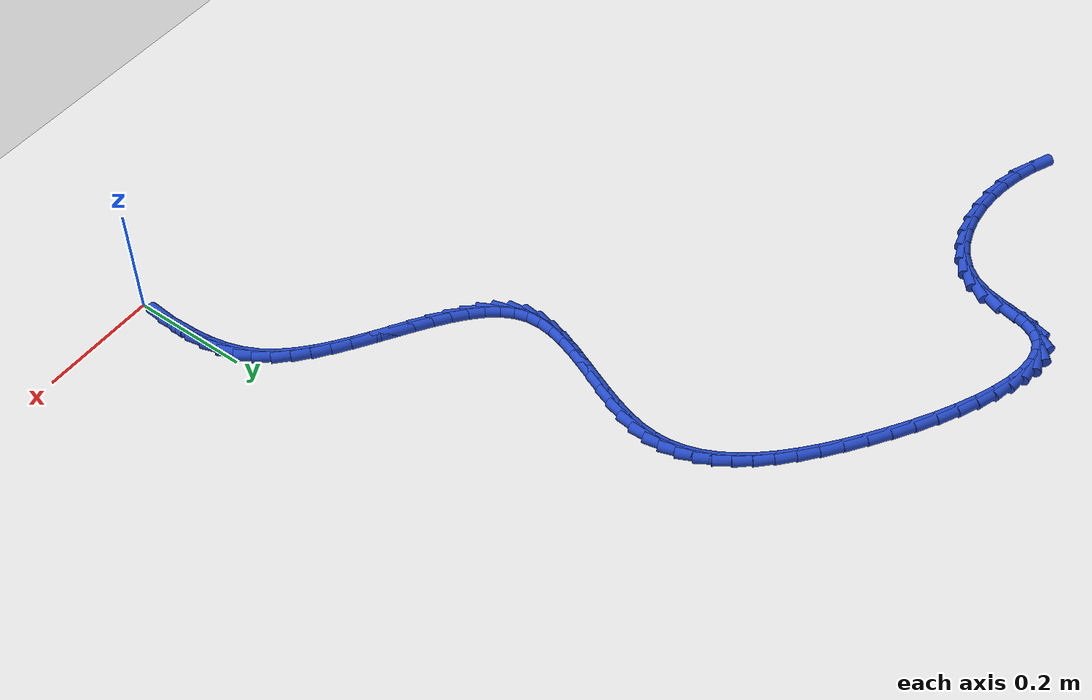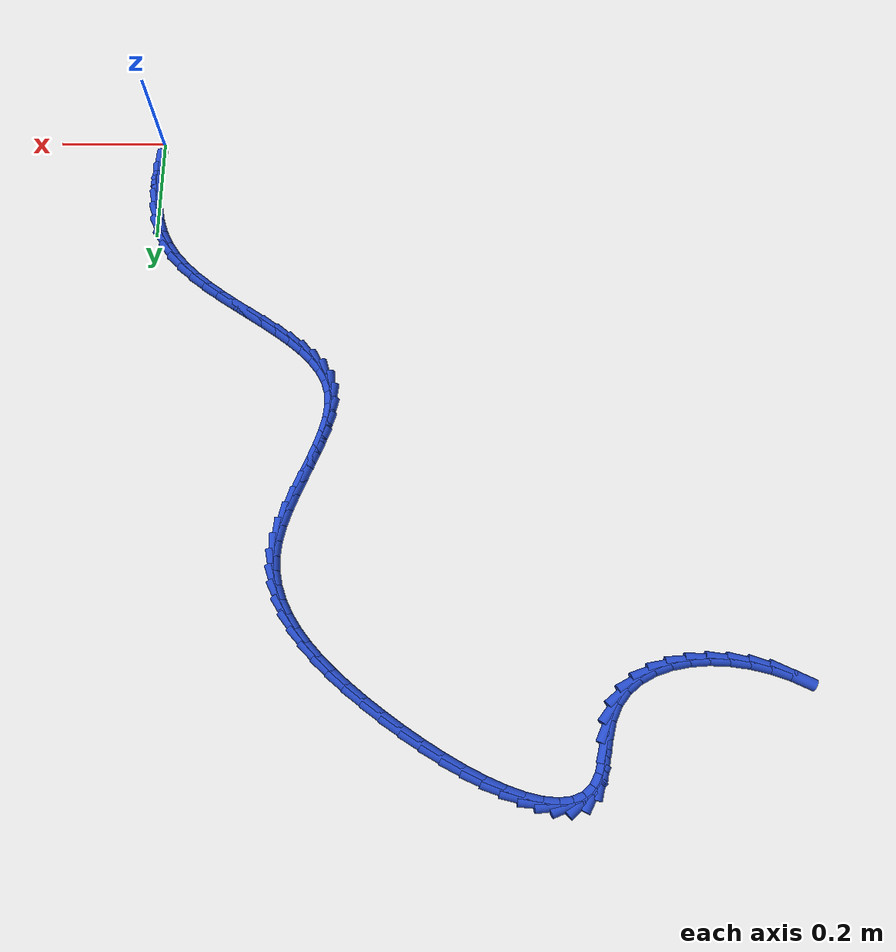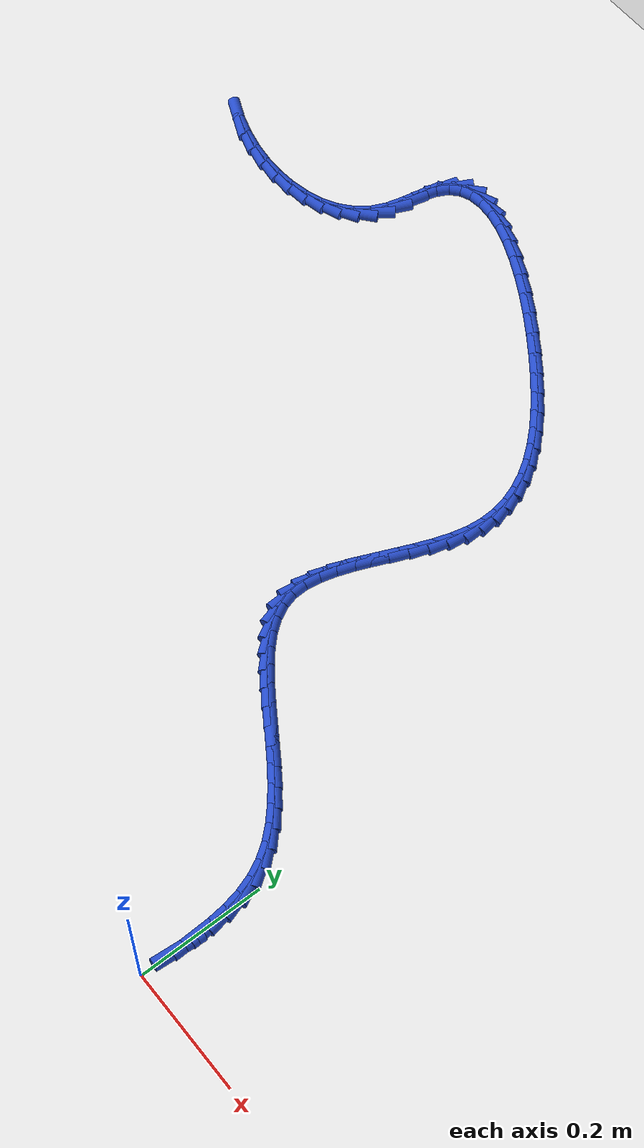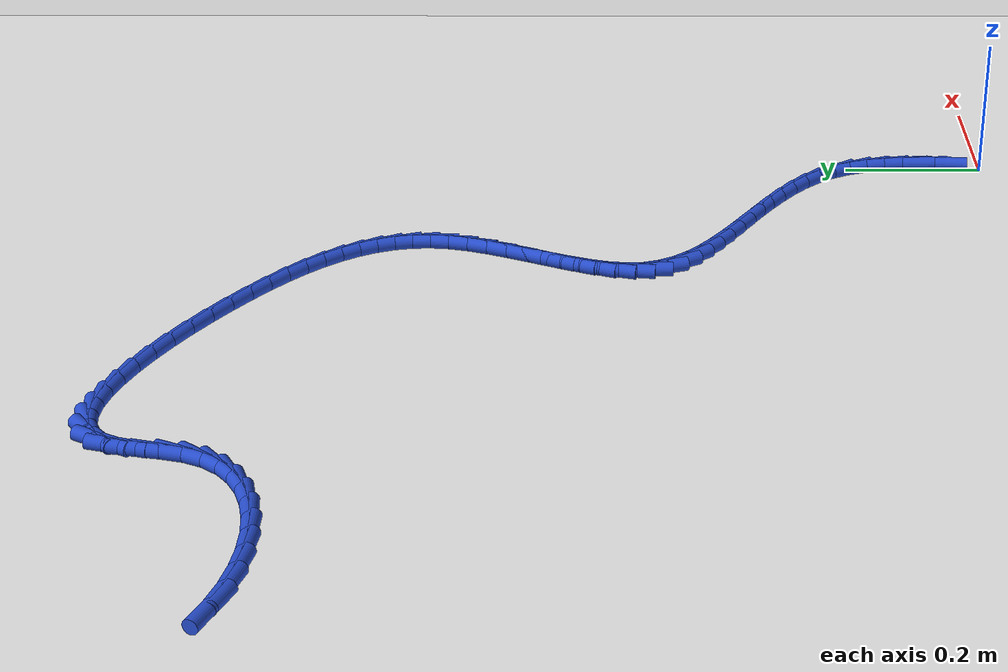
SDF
<sdf version="1.6">
 <world name="default">
  <model name="ground_plane">
   <static>1</static>
   <link name="link">
    <collision name="collision">
     <geometry><plane><normal>0 0 1</normal><size>100 100</size></plane></geometry>
     <surface><friction><ode><mu>100</mu><mu2>50</mu2></ode></friction></surface>
    </collision>
    <visual name="visual">
     <cast_shadows>0</cast_shadows>
     <geometry><plane><normal>0 0 1</normal><size>100 100</size></plane></geometry>
     <material>
      <script><uri>file://media/materials/scripts/gazebo.material</uri><name>Gazebo/WhiteGlow</name></script>
     </material>
    </visual>
   </link>
  </model>
  <model name="line">
   <link name="link_3">
    <pose>0.004853710855883276 0.08817364938218986 0.01 0 1.57 -1.536044362971187</pose>
    <collision name="collision">
     <geometry><cylinder><radius>0.01</radius><length>0.08</length></cylinder></geometry>
    </collision>
    <visual name="visual">
     <material>
      <script><name>Gazebo/Blue</name><uri>file://media/materials/scripts/gazebo.material</uri></script>
     </material>
     <geometry><cylinder><radius>0.01</radius><length>0.08</length></cylinder></geometry>
    </visual>
   </link>
   <link name="link_4">
    <pose>0.0038422200450848867 0.11726793570787472 0.01 0 1.57 -1.4612395565642085</pose>
    <collision name="collision">
     <geometry><cylinder><radius>0.01</radius><length>0.08</length></cylinder></geometry>
    </collision>
    <visual name="visual">
     <material>
      <script><name>Gazebo/Blue</name><uri>file://media/materials/scripts/gazebo.material</uri></script>
     </material>
     <geometry><cylinder><radius>0.01</radius><length>0.08</length></cylinder></geometry>
    </visual>
   </link>
   <link name="link_5">
    <pose>0.000710977737129961 0.1457344968598441 0.01 0 1.57 -1.3656035269785924</pose>
    <collision name="collision">
     <geometry><cylinder><radius>0.01</radius><length>0.08</length></cylinder></geometry>
    </collision>
    <visual name="visual">
     <material>
      <script><name>Gazebo/Blue</name><uri>file://media/materials/scripts/gazebo.material</uri></script>
     </material>
     <geometry><cylinder><radius>0.01</radius><length>0.08</length></cylinder></geometry>
    </visual>
   </link>
   <link name="link_6">
    <pose>-0.005023048637447583 0.17328577677438217 0.01 0 1.57 -1.2477814903358084</pose>
    <collision name="collision">
     <geometry><cylinder><radius>0.01</radius><length>0.08</length></cylinder></geometry>
    </collision>
    <visual name="visual">
     <material>
      <script><name>Gazebo/Blue</name><uri>file://media/materials/scripts/gazebo.material</uri></script>
     </material>
     <geometry><cylinder><radius>0.01</radius><length>0.08</length></cylinder></geometry>
    </visual>
   </link>
   <link name="link_7">
    <pose>-0.013842891648113805 0.19963421938777318 0.01 0 1.57 -1.1084515625861266</pose>
    <collision name="collision">
     <geometry><cylinder><radius>0.01</radius><length>0.08</length></cylinder></geometry>
    </collision>
    <visual name="visual">
     <material>
      <script><name>Gazebo/Blue</name><uri>file://media/materials/scripts/gazebo.material</uri></script>
     </material>
     <geometry><cylinder><radius>0.01</radius><length>0.08</length></cylinder></geometry>
    </visual>
   </link>
   <link name="link_8">
    <pose>-0.026231483053913266 0.22449231513812304 0.01 0 1.57 -0.9607501914604886</pose>
    <collision name="collision">
     <geometry><cylinder><radius>0.01</radius><length>0.08</length></cylinder></geometry>
    </collision>
    <visual name="visual">
     <material>
      <script><name>Gazebo/Blue</name><uri>file://media/materials/scripts/gazebo.material</uri></script>
     </material>
     <geometry><cylinder><radius>0.01</radius><length>0.08</length></cylinder></geometry>
    </visual>
   </link>
   <link name="link_9">
    <pose>-0.04243924915800756 0.24767980455804334 0.01 0 1.57 -0.8368820884955975</pose>
    <collision name="collision">
     <geometry><cylinder><radius>0.01</radius><length>0.08</length></cylinder></geometry>
    </collision>
    <visual name="visual">
     <material>
      <script><name>Gazebo/Blue</name><uri>file://media/materials/scripts/gazebo.material</uri></script>
     </material>
     <geometry><cylinder><radius>0.01</radius><length>0.08</length></cylinder></geometry>
    </visual>
   </link>
   <link name="link_10">
    <pose>-0.061987898365337336 0.2693525711027094 0.01 0 1.57 -0.7411289601158716</pose>
    <collision name="collision">
     <geometry><cylinder><radius>0.01</radius><length>0.08</length></cylinder></geometry>
    </collision>
    <visual name="visual">
     <material>
      <script><name>Gazebo/Blue</name><uri>file://media/materials/scripts/gazebo.material</uri></script>
     </material>
     <geometry><cylinder><radius>0.01</radius><length>0.08</length></cylinder></geometry>
    </visual>
   </link>
   <link name="link_11">
    <pose>-0.08425675304448016 0.2897321780445642 0.01 0 1.57 -0.6700518799153489</pose>
    <collision name="collision">
     <geometry><cylinder><radius>0.01</radius><length>0.08</length></cylinder></geometry>
    </collision>
    <visual name="visual">
     <material>
      <script><name>Gazebo/Blue</name><uri>file://media/materials/scripts/gazebo.material</uri></script>
     </material>
     <geometry><cylinder><radius>0.01</radius><length>0.08</length></cylinder></geometry>
    </visual>
   </link>
   <link name="link_12">
    <pose>-0.10862513556401354 0.30904018865605126 0.01 0 1.57 -0.6201385105414714</pose>
    <collision name="collision">
     <geometry><cylinder><radius>0.01</radius><length>0.08</length></cylinder></geometry>
    </collision>
    <visual name="visual">
     <material>
      <script><name>Gazebo/Blue</name><uri>file://media/materials/scripts/gazebo.material</uri></script>
     </material>
     <geometry><cylinder><radius>0.01</radius><length>0.08</length></cylinder></geometry>
    </visual>
   </link>
   <link name="link_13">
    <pose>-0.13447236829251505 0.3274981662096138 0.01 0 1.57 -0.5886738410782767</pose>
    <collision name="collision">
     <geometry><cylinder><radius>0.01</radius><length>0.08</length></cylinder></geometry>
    </collision>
    <visual name="visual">
     <material>
      <script><name>Gazebo/Blue</name><uri>file://media/materials/scripts/gazebo.material</uri></script>
     </material>
     <geometry><cylinder><radius>0.01</radius><length>0.08</length></cylinder></geometry>
    </visual>
   </link>
   <link name="link_14">
    <pose>-0.1611777735985621 0.3453276739776952 0.01 0 1.57 -0.5740159463636794</pose>
    <collision name="collision">
     <geometry><cylinder><radius>0.01</radius><length>0.08</length></cylinder></geometry>
    </collision>
    <visual name="visual">
     <material>
      <script><name>Gazebo/Blue</name><uri>file://media/materials/scripts/gazebo.material</uri></script>
     </material>
     <geometry><cylinder><radius>0.01</radius><length>0.08</length></cylinder></geometry>
    </visual>
   </link>
   <link name="link_15">
    <pose>-0.18812067385073244 0.36275027523273856 0.01 0 1.57 -0.5756719464370353</pose>
    <collision name="collision">
     <geometry><cylinder><radius>0.01</radius><length>0.08</length></cylinder></geometry>
    </collision>
    <visual name="visual">
     <material>
      <script><name>Gazebo/Blue</name><uri>file://media/materials/scripts/gazebo.material</uri></script>
     </material>
     <geometry><cylinder><radius>0.01</radius><length>0.08</length></cylinder></geometry>
    </visual>
   </link>
   <link name="link_16">
    <pose>-0.21468039141760334 0.37998753324718737 0.01 0 1.57 -0.5943750627849352</pose>
    <collision name="collision">
     <geometry><cylinder><radius>0.01</radius><length>0.08</length></cylinder></geometry>
    </collision>
    <visual name="visual">
     <material>
      <script><name>Gazebo/Blue</name><uri>file://media/materials/scripts/gazebo.material</uri></script>
     </material>
     <geometry><cylinder><radius>0.01</radius><length>0.08</length></cylinder></geometry>
    </visual>
   </link>
   <link name="link_17">
    <pose>-0.24023624866775264 0.39726101129348484 0.01 0 1.57 -0.6322494054699238</pose>
    <collision name="collision">
     <geometry><cylinder><radius>0.01</radius><length>0.08</length></cylinder></geometry>
    </collision>
    <visual name="visual">
     <material>
      <script><name>Gazebo/Blue</name><uri>file://media/materials/scripts/gazebo.material</uri></script>
     </material>
     <geometry><cylinder><radius>0.01</radius><length>0.08</length></cylinder></geometry>
    </visual>
   </link>
   <link name="link_18">
    <pose>-0.2641675679697576 0.4147922726440743 0.01 0 1.57 -0.6930719671084805</pose>
    <collision name="collision">
     <geometry><cylinder><radius>0.01</radius><length>0.08</length></cylinder></geometry>
    </collision>
    <visual name="visual">
     <material>
      <script><name>Gazebo/Blue</name><uri>file://media/materials/scripts/gazebo.material</uri></script>
     </material>
     <geometry><cylinder><radius>0.01</radius><length>0.08</length></cylinder></geometry>
    </visual>
   </link>
   <link name="link_19">
    <pose>-0.28585367169219594 0.43280288057139904 0.01 0 1.57 -0.7825021488508537</pose>
    <collision name="collision">
     <geometry><cylinder><radius>0.01</radius><length>0.08</length></cylinder></geometry>
    </collision>
    <visual name="visual">
     <material>
      <script><name>Gazebo/Blue</name><uri>file://media/materials/scripts/gazebo.material</uri></script>
     </material>
     <geometry><cylinder><radius>0.01</radius><length>0.08</length></cylinder></geometry>
    </visual>
   </link>
   <link name="link_20">
    <pose>-0.3046738822036452 0.45151439834790236 0.01 0 1.57 -0.9077646450076717</pose>
    <collision name="collision">
     <geometry><cylinder><radius>0.01</radius><length>0.08</length></cylinder></geometry>
    </collision>
    <visual name="visual">
     <material>
      <script><name>Gazebo/Blue</name><uri>file://media/materials/scripts/gazebo.material</uri></script>
     </material>
     <geometry><cylinder><radius>0.01</radius><length>0.08</length></cylinder></geometry>
    </visual>
   </link>
   <link name="link_21">
    <pose>-0.32000752187268283 0.47114838924602753 0.01 0 1.57 -1.075429963759417</pose>
    <collision name="collision">
     <geometry><cylinder><radius>0.01</radius><length>0.08</length></cylinder></geometry>
    </collision>
    <visual name="visual">
     <material>
      <script><name>Gazebo/Blue</name><uri>file://media/materials/scripts/gazebo.material</uri></script>
     </material>
     <geometry><cylinder><radius>0.01</radius><length>0.08</length></cylinder></geometry>
    </visual>
   </link>
   <link name="link_22">
    <pose>-0.33123391306788624 0.4919264165382179 0.01 0 1.57 -1.2853421165258418</pose>
    <collision name="collision">
     <geometry><cylinder><radius>0.01</radius><length>0.08</length></cylinder></geometry>
    </collision>
    <visual name="visual">
     <material>
      <script><name>Gazebo/Blue</name><uri>file://media/materials/scripts/gazebo.material</uri></script>
     </material>
     <geometry><cylinder><radius>0.01</radius><length>0.08</length></cylinder></geometry>
    </visual>
   </link>
   <link name="link_23">
    <pose>-0.33773237815783325 0.5140700434969168 0.01 0 1.57 -1.514319083122611</pose>
    <collision name="collision">
     <geometry><cylinder><radius>0.01</radius><length>0.08</length></cylinder></geometry>
    </collision>
    <visual name="visual">
     <material>
      <script><name>Gazebo/Blue</name><uri>file://media/materials/scripts/gazebo.material</uri></script>
     </material>
     <geometry><cylinder><radius>0.01</radius><length>0.08</length></cylinder></geometry>
    </visual>
   </link>
   <link name="link_24">
    <pose>-0.33907086867658515 0.5377444831598893 0.01 0 1.57 1.4423959399795072</pose>
    <collision name="collision">
     <geometry><cylinder><radius>0.01</radius><length>0.08</length></cylinder></geometry>
    </collision>
    <visual name="visual">
     <material>
      <script><name>Gazebo/Blue</name><uri>file://media/materials/scripts/gazebo.material</uri></script>
     </material>
     <geometry><cylinder><radius>0.01</radius><length>0.08</length></cylinder></geometry>
    </visual>
   </link>
   <link name="link_25">
    <pose>-0.3358345021069804 0.5628110849509536 0.01 0 1.57 1.3139983009104146</pose>
    <collision name="collision">
     <geometry><cylinder><radius>0.01</radius><length>0.08</length></cylinder></geometry>
    </collision>
    <visual name="visual">
     <material>
      <script><name>Gazebo/Blue</name><uri>file://media/materials/scripts/gazebo.material</uri></script>
     </material>
     <geometry><cylinder><radius>0.01</radius><length>0.08</length></cylinder></geometry>
    </visual>
   </link>
   <link name="link_26">
    <pose>-0.32894972497070313 0.589029231180877 0.01 0 1.57 1.2304699367790497</pose>
    <collision name="collision">
     <geometry><cylinder><radius>0.01</radius><length>0.08</length></cylinder></geometry>
    </collision>
    <visual name="visual">
     <material>
      <script><name>Gazebo/Blue</name><uri>file://media/materials/scripts/gazebo.material</uri></script>
     </material>
     <geometry><cylinder><radius>0.01</radius><length>0.08</length></cylinder></geometry>
    </visual>
   </link>
   <link name="link_27">
    <pose>-0.3193432340762747 0.6161582293908558 0.01 0 1.57 1.1815804407903943</pose>
    <collision name="collision">
     <geometry><cylinder><radius>0.01</radius><length>0.08</length></cylinder></geometry>
    </collision>
    <visual name="visual">
     <material>
      <script><name>Gazebo/Blue</name><uri>file://media/materials/scripts/gazebo.material</uri></script>
     </material>
     <geometry><cylinder><radius>0.01</radius><length>0.08</length></cylinder></geometry>
    </visual>
   </link>
   <link name="link_28">
    <pose>-0.3079417262322162 0.6439573871220857 0.01 0 1.57 1.1607728836388596</pose>
    <collision name="collision">
     <geometry><cylinder><radius>0.01</radius><length>0.08</length></cylinder></geometry>
    </collision>
    <visual name="visual">
     <material>
      <script><name>Gazebo/Blue</name><uri>file://media/materials/scripts/gazebo.material</uri></script>
     </material>
     <geometry><cylinder><radius>0.01</radius><length>0.08</length></cylinder></geometry>
    </visual>
   </link>
   <link name="link_29">
    <pose>-0.2956718982470489 0.6721860119157623 0.01 0 1.57 1.164936784153566</pose>
    <collision name="collision">
     <geometry><cylinder><radius>0.01</radius><length>0.08</length></cylinder></geometry>
    </collision>
    <visual name="visual">
     <material>
      <script><name>Gazebo/Blue</name><uri>file://media/materials/scripts/gazebo.material</uri></script>
     </material>
     <geometry><cylinder><radius>0.01</radius><length>0.08</length></cylinder></geometry>
    </visual>
   </link>
   <link name="link_30">
    <pose>-0.28346044692929423 0.7006034113130818 0.01 0 1.57 1.1939365933632693</pose>
    <collision name="collision">
     <geometry><cylinder><radius>0.01</radius><length>0.08</length></cylinder></geometry>
    </collision>
    <visual name="visual">
     <material>
      <script><name>Gazebo/Blue</name><uri>file://media/materials/scripts/gazebo.material</uri></script>
     </material>
     <geometry><cylinder><radius>0.01</radius><length>0.08</length></cylinder></geometry>
    </visual>
   </link>
   <link name="link_31">
    <pose>-0.2722340690874734 0.7289688928552399 0.01 0 1.57 1.2504254797631473</pose>
    <collision name="collision">
     <geometry><cylinder><radius>0.01</radius><length>0.08</length></cylinder></geometry>
    </collision>
    <visual name="visual">
     <material>
      <script><name>Gazebo/Blue</name><uri>file://media/materials/scripts/gazebo.material</uri></script>
     </material>
     <geometry><cylinder><radius>0.01</radius><length>0.08</length></cylinder></geometry>
    </visual>
   </link>
   <link name="link_32">
    <pose>-0.2629194615301076 0.7570417640834323 0.01 0 1.57 1.3398349631236368</pose>
    <collision name="collision">
     <geometry><cylinder><radius>0.01</radius><length>0.08</length></cylinder></geometry>
    </collision>
    <visual name="visual">
     <material>
      <script><name>Gazebo/Blue</name><uri>file://media/materials/scripts/gazebo.material</uri></script>
     </material>
     <geometry><cylinder><radius>0.01</radius><length>0.08</length></cylinder></geometry>
    </visual>
   </link>
   <link name="link_33">
    <pose>-0.2564433210657181 0.7845813325388549 0.01 0 1.57 1.467790540479625</pose>
    <collision name="collision">
     <geometry><cylinder><radius>0.01</radius><length>0.08</length></cylinder></geometry>
    </collision>
    <visual name="visual">
     <material>
      <script><name>Gazebo/Blue</name><uri>file://media/materials/scripts/gazebo.material</uri></script>
     </material>
     <geometry><cylinder><radius>0.01</radius><length>0.08</length></cylinder></geometry>
    </visual>
   </link>
   <link name="link_34">
    <pose>-0.2536748404327567 0.8113631515840094 0.01 0 1.57 -1.5261954079239068</pose>
    <collision name="collision">
     <geometry><cylinder><radius>0.01</radius><length>0.08</length></cylinder></geometry>
    </collision>
    <visual name="visual">
     <material>
      <script><name>Gazebo/Blue</name><uri>file://media/materials/scripts/gazebo.material</uri></script>
     </material>
     <geometry><cylinder><radius>0.01</radius><length>0.08</length></cylinder></geometry>
    </visual>
   </link>
   <link name="link_35">
    <pose>-0.25483447080682603 0.8373460544690847 0.01 0 1.57 -1.3792264050667045</pose>
    <collision name="collision">
     <geometry><cylinder><radius>0.01</radius><length>0.08</length></cylinder></geometry>
    </collision>
    <visual name="visual">
     <material>
      <script><name>Gazebo/Blue</name><uri>file://media/materials/scripts/gazebo.material</uri></script>
     </material>
     <geometry><cylinder><radius>0.01</radius><length>0.08</length></cylinder></geometry>
    </visual>
   </link>
   <link name="link_36">
    <pose>-0.2597333084637775 0.8626045237634224 0.01 0 1.57 -1.2403211299335417</pose>
    <collision name="collision">
     <geometry><cylinder><radius>0.01</radius><length>0.08</length></cylinder></geometry>
    </collision>
    <visual name="visual">
     <material>
      <script><name>Gazebo/Blue</name><uri>file://media/materials/scripts/gazebo.material</uri></script>
     </material>
     <geometry><cylinder><radius>0.01</radius><length>0.08</length></cylinder></geometry>
    </visual>
   </link>
   <link name="link_37">
    <pose>-0.2681760282653409 0.8872148561887592 0.01 0 1.57 -1.114764269633036</pose>
    <collision name="collision">
     <geometry><cylinder><radius>0.01</radius><length>0.08</length></cylinder></geometry>
    </collision>
    <visual name="visual">
     <material>
      <script><name>Gazebo/Blue</name><uri>file://media/materials/scripts/gazebo.material</uri></script>
     </material>
     <geometry><cylinder><radius>0.01</radius><length>0.08</length></cylinder></geometry>
    </visual>
   </link>
   <link name="link_38">
    <pose>-0.2799673050732459 0.9112533484668306 0.01 0 1.57 -1.0051976495566326</pose>
    <collision name="collision">
     <geometry><cylinder><radius>0.01</radius><length>0.08</length></cylinder></geometry>
    </collision>
    <visual name="visual">
     <material>
      <script><name>Gazebo/Blue</name><uri>file://media/materials/scripts/gazebo.material</uri></script>
     </material>
     <geometry><cylinder><radius>0.01</radius><length>0.08</length></cylinder></geometry>
    </visual>
   </link>
   <link name="link_39">
    <pose>-0.2949118137492225 0.9347962973193731 0.01 0 1.57 -0.911985034639637</pose>
    <collision name="collision">
     <geometry><cylinder><radius>0.01</radius><length>0.08</length></cylinder></geometry>
    </collision>
    <visual name="visual">
     <material>
      <script><name>Gazebo/Blue</name><uri>file://media/materials/scripts/gazebo.material</uri></script>
     </material>
     <geometry><cylinder><radius>0.01</radius><length>0.08</length></cylinder></geometry>
    </visual>
   </link>
   <link name="link_40">
    <pose>-0.31281422915499996 0.9579199994681215 0.01 0 1.57 -0.8340585048815566</pose>
    <collision name="collision">
     <geometry><cylinder><radius>0.01</radius><length>0.08</length></cylinder></geometry>
    </collision>
    <visual name="visual">
     <material>
      <script><name>Gazebo/Blue</name><uri>file://media/materials/scripts/gazebo.material</uri></script>
     </material>
     <geometry><cylinder><radius>0.01</radius><length>0.08</length></cylinder></geometry>
    </visual>
   </link>
   <link name="link_41">
    <pose>-0.3334792261523084 0.9807007516348122 0.01 0 1.57 -0.7697008340949969</pose>
    <collision name="collision">
     <geometry><cylinder><radius>0.01</radius><length>0.08</length></cylinder></geometry>
    </collision>
    <visual name="visual">
     <material>
      <script><name>Gazebo/Blue</name><uri>file://media/materials/scripts/gazebo.material</uri></script>
     </material>
     <geometry><cylinder><radius>0.01</radius><length>0.08</length></cylinder></geometry>
    </visual>
   </link>
   <link name="link_42">
    <pose>-0.35671147960287725 1.003214850541181 0.01 0 1.57 -0.7170594254745618</pose>
    <collision name="collision">
     <geometry><cylinder><radius>0.01</radius><length>0.08</length></cylinder></geometry>
    </collision>
    <visual name="visual">
     <material>
      <script><name>Gazebo/Blue</name><uri>file://media/materials/scripts/gazebo.material</uri></script>
     </material>
     <geometry><cylinder><radius>0.01</radius><length>0.08</length></cylinder></geometry>
    </visual>
   </link>
   <link name="link_43">
    <pose>-0.38231566436843645 1.0255385929089647 0.01 0 1.57 -0.6744127164814446</pose>
    <collision name="collision">
     <geometry><cylinder><radius>0.01</radius><length>0.08</length></cylinder></geometry>
    </collision>
    <visual name="visual">
     <material>
      <script><name>Gazebo/Blue</name><uri>file://media/materials/scripts/gazebo.material</uri></script>
     </material>
     <geometry><cylinder><radius>0.01</radius><length>0.08</length></cylinder></geometry>
    </visual>
   </link>
   <link name="link_44">
    <pose>-0.41009645531071587 1.0477482754598981 0.01 0 1.57 -0.6402232148361074</pose>
    <collision name="collision">
     <geometry><cylinder><radius>0.01</radius><length>0.08</length></cylinder></geometry>
    </collision>
    <visual name="visual">
     <material>
      <script><name>Gazebo/Blue</name><uri>file://media/materials/scripts/gazebo.material</uri></script>
     </material>
     <geometry><cylinder><radius>0.01</radius><length>0.08</length></cylinder></geometry>
    </visual>
   </link>
   <link name="link_45">
    <pose>-0.439856244601543 1.069916069690906 0.01 0 1.57 -0.6103311489327337</pose>
    <collision name="collision">
     <geometry><cylinder><radius>0.01</radius><length>0.08</length></cylinder></geometry>
    </collision>
    <visual name="visual">
     <material>
      <script><name>Gazebo/Blue</name><uri>file://media/materials/scripts/gazebo.material</uri></script>
     </material>
     <geometry><cylinder><radius>0.01</radius><length>0.08</length></cylinder></geometry>
    </visual>
   </link>
   <link name="link_46">
    <pose>-0.4712730286407604 1.0918893419142146 0.01 0 1.57 -0.5790112832817943</pose>
    <collision name="collision">
     <geometry><cylinder><radius>0.01</radius><length>0.08</length></cylinder></geometry>
    </collision>
    <visual name="visual">
     <material>
      <script><name>Gazebo/Blue</name><uri>file://media/materials/scripts/gazebo.material</uri></script>
     </material>
     <geometry><cylinder><radius>0.01</radius><length>0.08</length></cylinder></geometry>
    </visual>
   </link>
   <link name="link_47">
    <pose>-0.5038388881625324 1.1131794759171287 0.01 0 1.57 -0.5443049999427603</pose>
    <collision name="collision">
     <geometry><cylinder><radius>0.01</radius><length>0.08</length></cylinder></geometry>
    </collision>
    <visual name="visual">
     <material>
      <script><name>Gazebo/Blue</name><uri>file://media/materials/scripts/gazebo.material</uri></script>
     </material>
     <geometry><cylinder><radius>0.01</radius><length>0.08</length></cylinder></geometry>
    </visual>
   </link>
   <link name="link_48">
    <pose>-0.5370306910361629 1.133270363146657 0.01 0 1.57 -0.5043061697665209</pose>
    <collision name="collision">
     <geometry><cylinder><radius>0.01</radius><length>0.08</length></cylinder></geometry>
    </collision>
    <visual name="visual">
     <material>
      <script><name>Gazebo/Blue</name><uri>file://media/materials/scripts/gazebo.material</uri></script>
     </material>
     <geometry><cylinder><radius>0.01</radius><length>0.08</length></cylinder></geometry>
    </visual>
   </link>
   <link name="link_49">
    <pose>-0.5703253051309546 1.151645895049807 0.01 0 1.57 -0.4564901034539718</pose>
    <collision name="collision">
     <geometry><cylinder><radius>0.01</radius><length>0.08</length></cylinder></geometry>
    </collision>
    <visual name="visual">
     <material>
      <script><name>Gazebo/Blue</name><uri>file://media/materials/scripts/gazebo.material</uri></script>
     </material>
     <geometry><cylinder><radius>0.01</radius><length>0.08</length></cylinder></geometry>
    </visual>
   </link>
   <link name="link_50">
    <pose>-0.6031995983162115 1.1677899630735884 0.01 0 1.57 -0.3972430532414807</pose>
    <collision name="collision">
     <geometry><cylinder><radius>0.01</radius><length>0.08</length></cylinder></geometry>
    </collision>
    <visual name="visual">
     <material>
      <script><name>Gazebo/Blue</name><uri>file://media/materials/scripts/gazebo.material</uri></script>
     </material>
     <geometry><cylinder><radius>0.01</radius><length>0.08</length></cylinder></geometry>
    </visual>
   </link>
   <link name="link_51">
    <pose>-0.6351304384612365 1.1811864586650083 0.01 0 1.57 -0.32110233207687755</pose>
    <collision name="collision">
     <geometry><cylinder><radius>0.01</radius><length>0.08</length></cylinder></geometry>
    </collision>
    <visual name="visual">
     <material>
      <script><name>Gazebo/Blue</name><uri>file://media/materials/scripts/gazebo.material</uri></script>
     </material>
     <geometry><cylinder><radius>0.01</radius><length>0.08</length></cylinder></geometry>
    </visual>
   </link>
   <link name="link_52">
    <pose>-0.6655946934353335 1.1913192732710756 0.01 0 1.57 -0.21951716079136824</pose>
    <collision name="collision">
     <geometry><cylinder><radius>0.01</radius><length>0.08</length></cylinder></geometry>
    </collision>
    <visual name="visual">
     <material>
      <script><name>Gazebo/Blue</name><uri>file://media/materials/scripts/gazebo.material</uri></script>
     </material>
     <geometry><cylinder><radius>0.01</radius><length>0.08</length></cylinder></geometry>
    </visual>
   </link>
   <link name="link_53">
    <pose>-0.6940692311078055 1.197672298338799 0.01 0 1.57 -0.07907181824994931</pose>
    <collision name="collision">
     <geometry><cylinder><radius>0.01</radius><length>0.08</length></cylinder></geometry>
    </collision>
    <visual name="visual">
     <material>
      <script><name>Gazebo/Blue</name><uri>file://media/materials/scripts/gazebo.material</uri></script>
     </material>
     <geometry><cylinder><radius>0.01</radius><length>0.08</length></cylinder></geometry>
    </visual>
   </link>
   <link name="link_54">
    <pose>-0.7200309193479563 1.199729425315187 0.01 0 1.57 0.11959210192839471</pose>
    <collision name="collision">
     <geometry><cylinder><radius>0.01</radius><length>0.08</length></cylinder></geometry>
    </collision>
    <visual name="visual">
     <material>
      <script><name>Gazebo/Blue</name><uri>file://media/materials/scripts/gazebo.material</uri></script>
     </material>
     <geometry><cylinder><radius>0.01</radius><length>0.08</length></cylinder></geometry>
    </visual>
   </link>
   <link name="link_55">
    <pose>-0.742956626025089 1.196974545647247 0.01 0 1.57 0.3953884988400861</pose>
    <collision name="collision">
     <geometry><cylinder><radius>0.01</radius><length>0.08</length></cylinder></geometry>
    </collision>
    <visual name="visual">
     <material>
      <script><name>Gazebo/Blue</name><uri>file://media/materials/scripts/gazebo.material</uri></script>
     </material>
     <geometry><cylinder><radius>0.01</radius><length>0.08</length></cylinder></geometry>
    </visual>
   </link>
   <link name="link_56">
    <pose>-0.7623232190085071 1.1888915507819882 0.01 0 1.57 0.7389729424121195</pose>
    <collision name="collision">
     <geometry><cylinder><radius>0.01</radius><length>0.08</length></cylinder></geometry>
    </collision>
    <visual name="visual">
     <material>
      <script><name>Gazebo/Blue</name><uri>file://media/materials/scripts/gazebo.material</uri></script>
     </material>
     <geometry><cylinder><radius>0.01</radius><length>0.08</length></cylinder></geometry>
    </visual>
   </link>
   <link name="link_57">
    <pose>-0.777607566167514 1.1749643321664183 0.01 0 1.57 1.0856273546207393</pose>
    <collision name="collision">
     <geometry><cylinder><radius>0.01</radius><length>0.08</length></cylinder></geometry>
    </collision>
    <visual name="visual">
     <material>
      <script><name>Gazebo/Blue</name><uri>file://media/materials/scripts/gazebo.material</uri></script>
     </material>
     <geometry><cylinder><radius>0.01</radius><length>0.08</length></cylinder></geometry>
    </visual>
   </link>
   <link name="link_58">
    <pose>-0.78829732631115 1.1546877977082746 0.01 0 1.57 1.3179236141662545</pose>
    <collision name="collision">
     <geometry><cylinder><radius>0.01</radius><length>0.08</length></cylinder></geometry>
    </collision>
    <visual name="visual">
     <material>
      <script><name>Gazebo/Blue</name><uri>file://media/materials/scripts/gazebo.material</uri></script>
     </material>
     <geometry><cylinder><radius>0.01</radius><length>0.08</length></cylinder></geometry>
    </visual>
   </link>
   <link name="link_59">
    <pose>-0.7950100142362742 1.1287103242829677 0.01 0 1.57 1.3839884861339886</pose>
    <collision name="collision">
     <geometry><cylinder><radius>0.01</radius><length>0.08</length></cylinder></geometry>
    </collision>
    <visual name="visual">
     <material>
      <script><name>Gazebo/Blue</name><uri>file://media/materials/scripts/gazebo.material</uri></script>
     </material>
     <geometry><cylinder><radius>0.01</radius><length>0.08</length></cylinder></geometry>
    </visual>
   </link>
   <link name="link_60">
    <pose>-0.8004687503628161 1.0998298996637195 0.01 0 1.57 1.3267923486755313</pose>
    <collision name="collision">
     <geometry><cylinder><radius>0.01</radius><length>0.08</length></cylinder></geometry>
    </collision>
    <visual name="visual">
     <material>
      <script><name>Gazebo/Blue</name><uri>file://media/materials/scripts/gazebo.material</uri></script>
     </material>
     <geometry><cylinder><radius>0.01</radius><length>0.08</length></cylinder></geometry>
    </visual>
   </link>
   <link name="link_61">
    <pose>-0.8076266340803541 1.071079296948224 0.01 0 1.57 1.1463534179987565</pose>
    <collision name="collision">
     <geometry><cylinder><radius>0.01</radius><length>0.08</length></cylinder></geometry>
    </collision>
    <visual name="visual">
     <material>
      <script><name>Gazebo/Blue</name><uri>file://media/materials/scripts/gazebo.material</uri></script>
     </material>
     <geometry><cylinder><radius>0.01</radius><length>0.08</length></cylinder></geometry>
    </visual>
   </link>
   <link name="link_62">
    <pose>-0.8192592788898396 1.0453383524557573 0.01 0 1.57 0.9109110789206015</pose>
    <collision name="collision">
     <geometry><cylinder><radius>0.01</radius><length>0.08</length></cylinder></geometry>
    </collision>
    <visual name="visual">
     <material>
      <script><name>Gazebo/Blue</name><uri>file://media/materials/scripts/gazebo.material</uri></script>
     </material>
     <geometry><cylinder><radius>0.01</radius><length>0.08</length></cylinder></geometry>
    </visual>
   </link>
   <link name="link_63">
    <pose>-0.836056799253701 1.0236898610235108 0.01 0 1.57 0.6918155035580323</pose>
    <collision name="collision">
     <geometry><cylinder><radius>0.01</radius><length>0.08</length></cylinder></geometry>
    </collision>
    <visual name="visual">
     <material>
      <script><name>Gazebo/Blue</name><uri>file://media/materials/scripts/gazebo.material</uri></script>
     </material>
     <geometry><cylinder><radius>0.01</radius><length>0.08</length></cylinder></geometry>
    </visual>
   </link>
   <link name="link_64">
    <pose>-0.8573531970695129 1.006048076775687 0.01 0 1.57 0.5007708199092508</pose>
    <collision name="collision">
     <geometry><cylinder><radius>0.01</radius><length>0.08</length></cylinder></geometry>
    </collision>
    <visual name="visual">
     <material>
      <script><name>Gazebo/Blue</name><uri>file://media/materials/scripts/gazebo.material</uri></script>
     </material>
     <geometry><cylinder><radius>0.01</radius><length>0.08</length></cylinder></geometry>
    </visual>
   </link>
   <link name="link_65">
    <pose>-0.8824593899756058 0.992307362496008 0.01 0 1.57 0.33875205451915774</pose>
    <collision name="collision">
     <geometry><cylinder><radius>0.01</radius><length>0.08</length></cylinder></geometry>
    </collision>
    <visual name="visual">
     <material>
      <script><name>Gazebo/Blue</name><uri>file://media/materials/scripts/gazebo.material</uri></script>
     </material>
     <geometry><cylinder><radius>0.01</radius><length>0.08</length></cylinder></geometry>
    </visual>
   </link>
   <link name="link_66">
    <pose>-0.9106862956103109 0.9823620809681969 0.01 0 1.57 0.20127458190848088</pose>
    <collision name="collision">
     <geometry><cylinder><radius>0.01</radius><length>0.08</length></cylinder></geometry>
    </collision>
    <visual name="visual">
     <material>
      <script><name>Gazebo/Blue</name><uri>file://media/materials/scripts/gazebo.material</uri></script>
     </material>
     <geometry><cylinder><radius>0.01</radius><length>0.08</length></cylinder></geometry>
    </visual>
   </link>
   <link name="link_67">
    <pose>-0.9413448316119587 0.9761065949759763 0.01 0 1.57 0.08225958271098206</pose>
    <collision name="collision">
     <geometry><cylinder><radius>0.01</radius><length>0.08</length></cylinder></geometry>
    </collision>
    <visual name="visual">
     <material>
      <script><name>Gazebo/Blue</name><uri>file://media/materials/scripts/gazebo.material</uri></script>
     </material>
     <geometry><cylinder><radius>0.01</radius><length>0.08</length></cylinder></geometry>
    </visual>
   </link>
   <link name="link_68">
    <pose>-0.973745915618881 0.9734352673030692 0.01 0 1.57 -0.024123380938406897</pose>
    <collision name="collision">
     <geometry><cylinder><radius>0.01</radius><length>0.08</length></cylinder></geometry>
    </collision>
    <visual name="visual">
     <material>
      <script><name>Gazebo/Blue</name><uri>file://media/materials/scripts/gazebo.material</uri></script>
     </material>
     <geometry><cylinder><radius>0.01</radius><length>0.08</length></cylinder></geometry>
    </visual>
   </link>
   <link name="link_69">
    <pose>-1.0072004652694073 0.9742424607331976 0.01 0 1.57 -0.1229779624186971</pose>
    <collision name="collision">
     <geometry><cylinder><radius>0.01</radius><length>0.08</length></cylinder></geometry>
    </collision>
    <visual name="visual">
     <material>
      <script><name>Gazebo/Blue</name><uri>file://media/materials/scripts/gazebo.material</uri></script>
     </material>
     <geometry><cylinder><radius>0.01</radius><length>0.08</length></cylinder></geometry>
    </visual>
   </link>
   <link name="link_70">
    <pose>-1.0410193982018698 0.978422538050085 0.01 0 1.57 -0.21878732437438264</pose>
    <collision name="collision">
     <geometry><cylinder><radius>0.01</radius><length>0.08</length></cylinder></geometry>
    </collision>
    <visual name="visual">
     <material>
      <script><name>Gazebo/Blue</name><uri>file://media/materials/scripts/gazebo.material</uri></script>
     </material>
     <geometry><cylinder><radius>0.01</radius><length>0.08</length></cylinder></geometry>
    </visual>
   </link>
   <link name="link_71">
    <pose>-1.074513632054598 0.9858698620374533 0.01 0 1.57 -0.3157011110414314</pose>
    <collision name="collision">
     <geometry><cylinder><radius>0.01</radius><length>0.08</length></cylinder></geometry>
    </collision>
    <visual name="visual">
     <material>
      <script><name>Gazebo/Blue</name><uri>file://media/materials/scripts/gazebo.material</uri></script>
     </material>
     <geometry><cylinder><radius>0.01</radius><length>0.08</length></cylinder></geometry>
    </visual>
   </link>
   <link name="link_72">
    <pose>-1.1069940844659236 0.9964787954790258 0.01 0 1.57 -0.41784380704758606</pose>
    <collision name="collision">
     <geometry><cylinder><radius>0.01</radius><length>0.08</length></cylinder></geometry>
    </collision>
    <visual name="visual">
     <material>
      <script><name>Gazebo/Blue</name><uri>file://media/materials/scripts/gazebo.material</uri></script>
     </material>
     <geometry><cylinder><radius>0.01</radius><length>0.08</length></cylinder></geometry>
    </visual>
   </link>
   <link name="link_282">
    <pose>0.0048469695656835135 0.059267093040644286 0.01 0 1.57 1.4891961243936207</pose>
    <collision name="collision">
     <geometry><cylinder><radius>0.01</radius><length>0.08</length></cylinder></geometry>
    </collision>
    <visual name="visual">
     <material>
      <script><name>Gazebo/Blue</name><uri>file://media/materials/scripts/gazebo.material</uri></script>
     </material>
     <geometry><cylinder><radius>0.01</radius><length>0.08</length></cylinder></geometry>
    </visual>
   </link>
  </model>
 </world>
</sdf>
